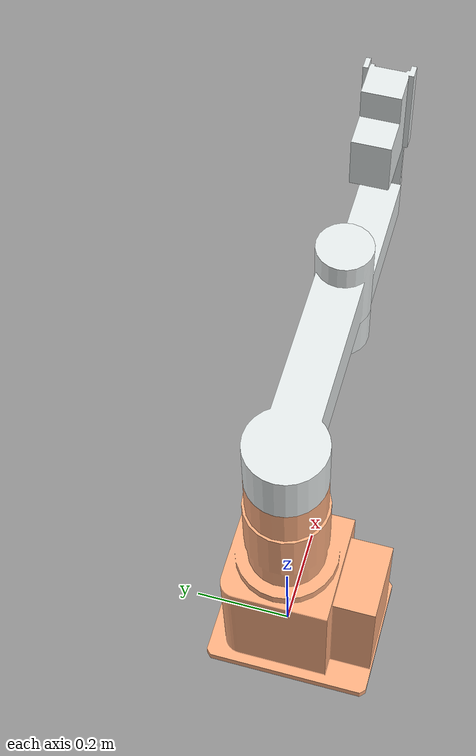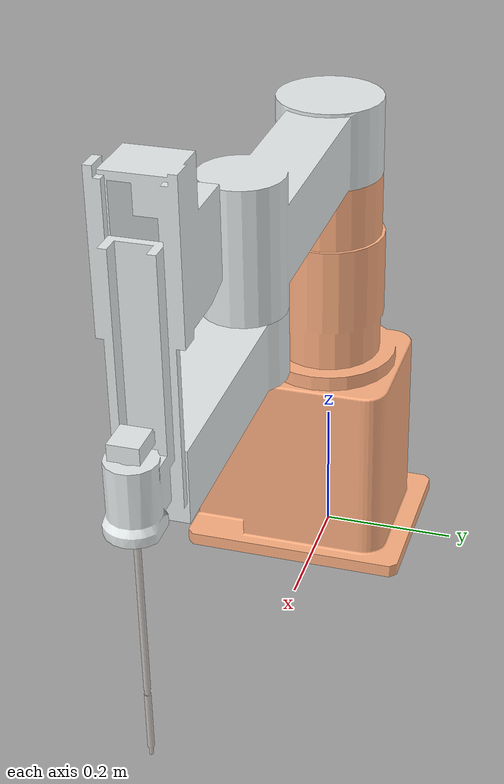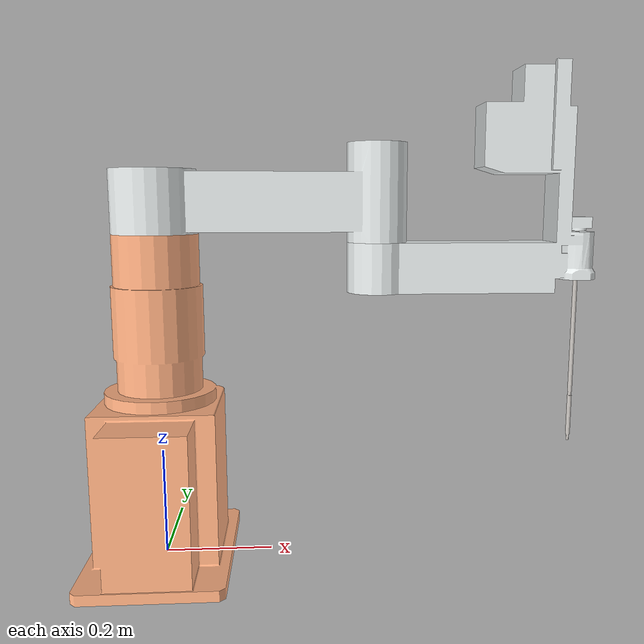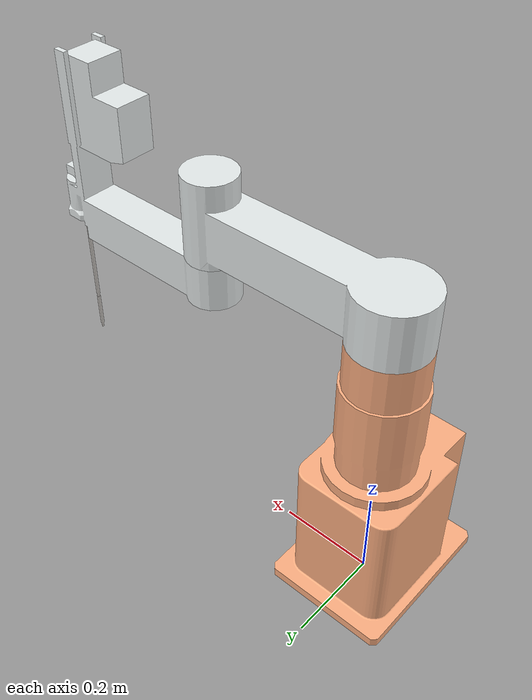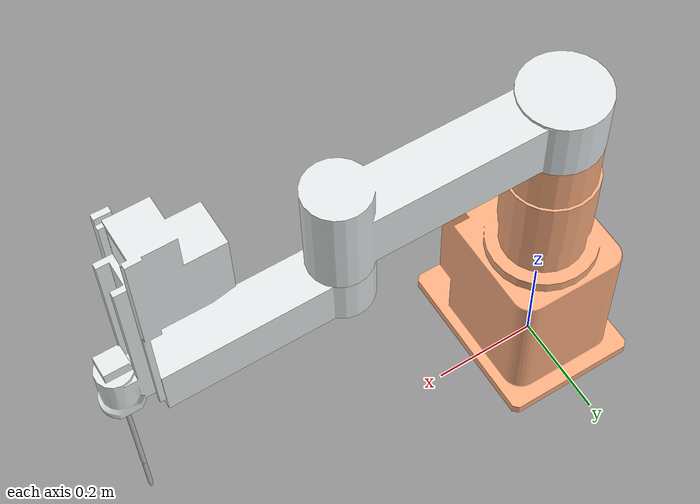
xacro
<?xml version="1.0"?>
<robot xmlns:xacro="http://www.ros.org/wiki/xacro" name="scara">

    <!-- Import scara urdf file -->
    <xacro:include filename="$(find scara)/urdf/urdf.xacro" />

    <!-- Import servo ros2_control description -->
    <xacro:include filename="$(find scara_hardware)/config/ros2_control.xacro" />
    <xacro:hardware_component
        name="hardware_component"
        plugin="mock_components/GenericSystem"
    />

</robot>

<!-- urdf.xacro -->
<robot name="scara">
    <link name="world" />
    <link name="base_link">
        <inertial>
            <origin xyz="-0.000640588858643432 -0.0227899395443669 0.222138385795263" rpy="0 0 0" />
            <mass value="25.2913216476849" />
            <inertia ixx="0.790731520652577" ixy="-0.000126452359034705" ixz="-0.00124958228784166" iyy="0.719705502706673" iyz="-0.045904832517807" izz="0.235661049152231" />
        </inertial>
        <visual>
            <origin xyz="0 0 0" rpy="0 0 0" />
            <geometry>
                <mesh filename="package://scara/meshes/base.stl" />
            </geometry>
            <material name="">
                <color rgba="1 0.690196078431373 0.509803921568627 1" />
            </material>
        </visual>
        <collision>
            <origin xyz="0 0 0" rpy="0 0 0" />
            <geometry>
                <mesh filename="package://scara/meshes/base.stl" />
            </geometry>
        </collision>
    </link>
    <joint name="fijacion" type="fixed">
        <origin xyz="0 0 0" rpy="0 0 0" />
        <parent link="world" />
        <child link="base_link" />
    </joint>
    <link name="antebrazo">
        <inertial>
            <origin xyz="0.19207255412873 -4.44089209850063E-16 0.0773291008797499" rpy="0 0 0" />
            <mass value="6.61812704263685" />
            <inertia ixx="0.0163492326815022" ixy="-4.33680868994202E-19" ixz="-0.00559214932720003" iyy="0.189161914146819" iyz="-4.33680868994202E-19" izz="0.185917826831014" />
        </inertial>
        <visual>
            <origin xyz="0 0 0" rpy="0 0 0" />
            <geometry>
                <mesh filename="package://scara/meshes/antebrazo.stl" />
            </geometry>
            <material name="">
                <color rgba="0.901960784313726 0.92156862745098 0.92156862745098 1" />
            </material>
        </visual>
        <collision>
            <origin xyz="0 0 0" rpy="0 0 0" />
            <geometry>
                <mesh filename="package://scara/meshes/antebrazo.stl" />
            </geometry>
        </collision>
    </link>
    <joint name="hombro" type="revolute">
        <limit lower="-${pi/2}" upper="${pi/2}" effort="0.0" velocity="0.0"/>
        <origin xyz="0 0 0.5925" rpy="0 0 0" />
        <parent link="base_link" />
        <child link="antebrazo" />
        <axis xyz="0 0 1" />
    </joint>
    <link name="brazo">
        <inertial>
            <origin xyz="0.222762310134691 3.29484034500283E-09 0.0488985638431653" rpy="0 0 0" />
            <mass value="2.65756869140876" />
            <inertia ixx="0.042822992999235" ixy="-7.69989501846202E-10" ixz="-0.0150865353873821" iyy="0.0810409610085131" iyz="5.25838247510818E-10" izz="0.042625926421083" />
        </inertial>
        <visual>
            <origin xyz="0 0 0" rpy="0 0 0" />
            <geometry>
                <mesh filename="package://scara/meshes/brazo.stl" />
            </geometry>
            <material name="">
                <color rgba="0.901960784313726 0.92156862745098 0.92156862745098 1" />
            </material>
        </visual>
        <collision>
            <origin xyz="0 0 0" rpy="0 0 0" />
            <geometry>
                <mesh filename="package://scara/meshes/brazo.stl" />
            </geometry>
        </collision>
    </link>
    <joint name="codo" type="revolute">
        <limit lower="-${pi/2}" upper="${pi/2}" effort="0.0" velocity="0.0"/>
        <origin xyz="0.4025 0 0" rpy="0 0 0" />
        <parent link="antebrazo" />
        <child link="brazo" />
        <axis xyz="0 0 1" />
    </joint>
    <link name="mano">
        <inertial>
            <origin xyz="-0.00102579079756804 5.55111512312578E-17 0.0135796008626214" rpy="0 0 0" />
            <mass value="0.0339542917352885" />
            <inertia ixx="4.97575617337366E-06" ixy="-1.05879118406788E-22" ixz="-3.76024980451015E-08" iyy="6.24472787989437E-06" iyz="-6.54663171255426E-22" izz="8.23729952674065E-06" />
        </inertial>
        <visual>
            <origin xyz="0 0 0" rpy="0 0 0" />
            <geometry>
                <mesh filename="package://scara/meshes/mano.stl" />
            </geometry>
            <material name="">
                <color rgba="0.901960784313726 0.92156862745098 0.92156862745098 1" />
            </material>
        </visual>
        <collision>
            <origin xyz="0 0 0" rpy="0 0 0" />
            <geometry>
                <mesh filename="package://scara/meshes/mano.stl" />
            </geometry>
        </collision>
    </link>
    <joint name="falange" type="prismatic">
        <origin xyz="0.37763 0 0.020231" rpy="0 0 0" />
        <parent link="brazo" />
        <child link="mano" />
        <axis xyz="0 0 1" />
        <limit lower="0" upper="0.15" effort="80" velocity="1" />
    </joint>
    <link name="dedo">
        <inertial>
            <origin xyz="-5.55111512312578E-17 -5.55111512312578E-17 -0.198709291093866" rpy="0 0 0" />
            <mass value="0.0213296330704596" />
            <inertia ixx="0.000283413287481571" ixy="0" ixz="3.50601186012906E-23" iyy="0.000283413287481571" iyz="-3.30206942352308E-20" izz="1.80782591982378E-07" />
        </inertial>
        <visual>
            <origin xyz="0 0 0" rpy="0 0 0" />
            <geometry>
                <mesh filename="package://scara/meshes/dedo.stl" />
            </geometry>
            <material name="">
                <color rgba="0.780392156862745 0.76078431372549 0.741176470588235 1" />
            </material>
        </visual>
        <collision>
            <origin xyz="0 0 0" rpy="0 0 0" />
            <geometry>
                <mesh filename="package://scara/meshes/dedo.stl" />
            </geometry>
        </collision>
    </link>
    <joint name="muneca" type="revolute">
        <limit lower="-${pi}" upper="${pi}" effort="0.0" velocity="0.0"/>
        <origin xyz="0 0 0" rpy="0 0 0" />
        <parent link="mano" />
        <child link="dedo" />
        <axis xyz="0 0 1" />
    </joint>
</robot>
